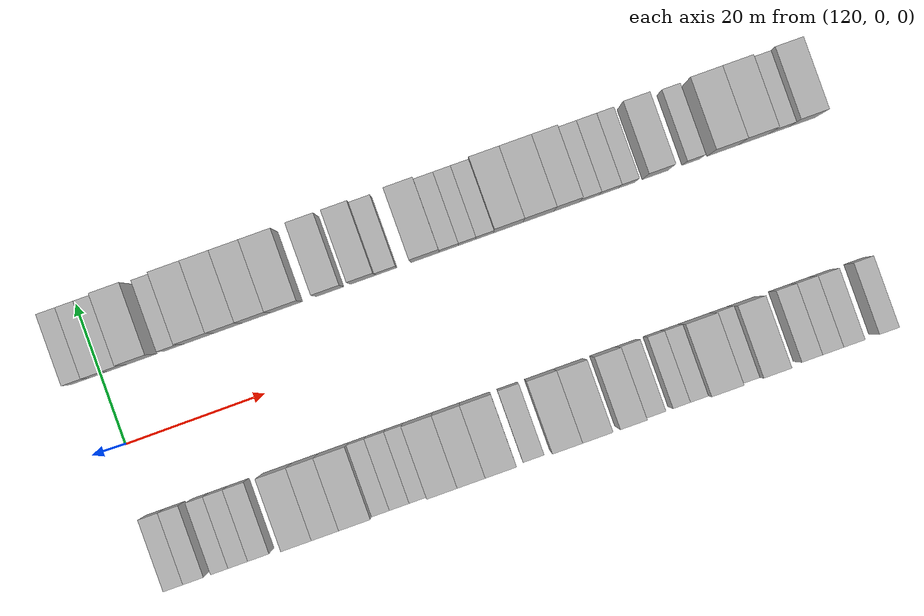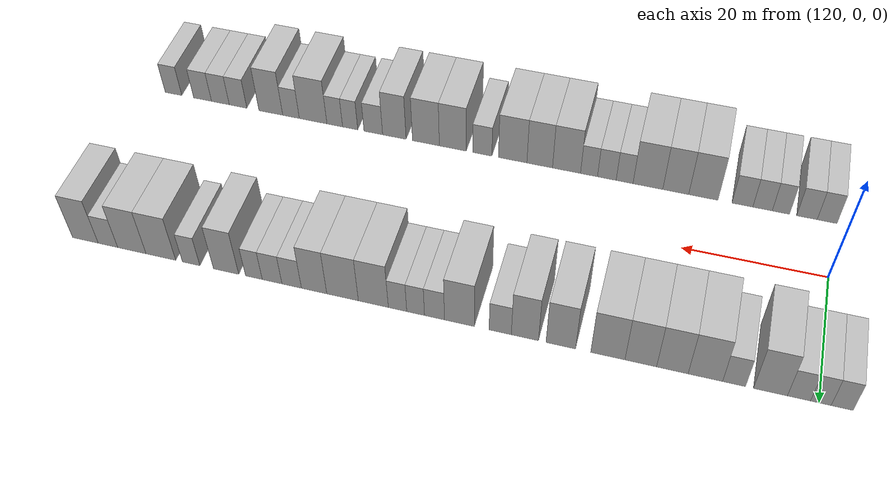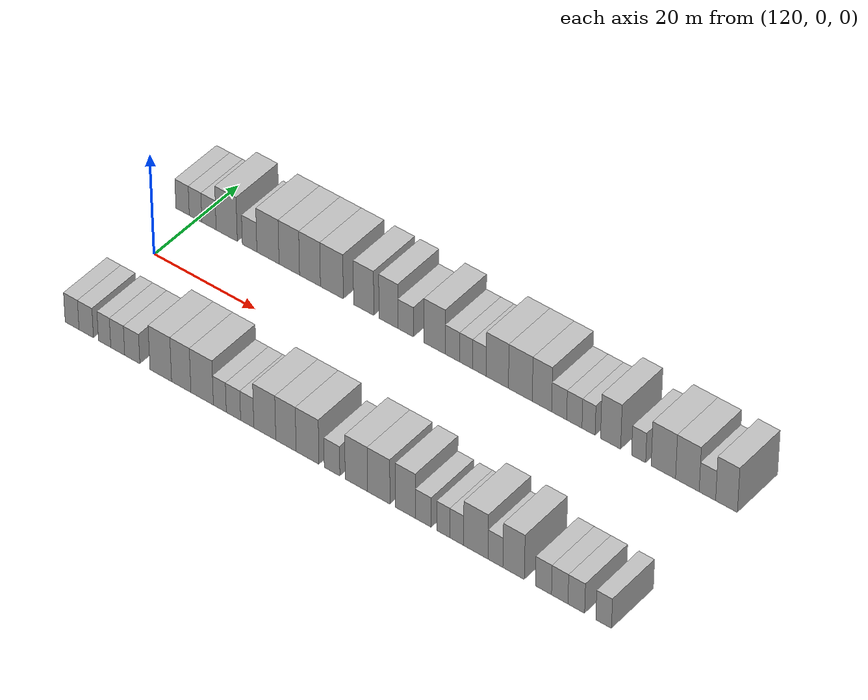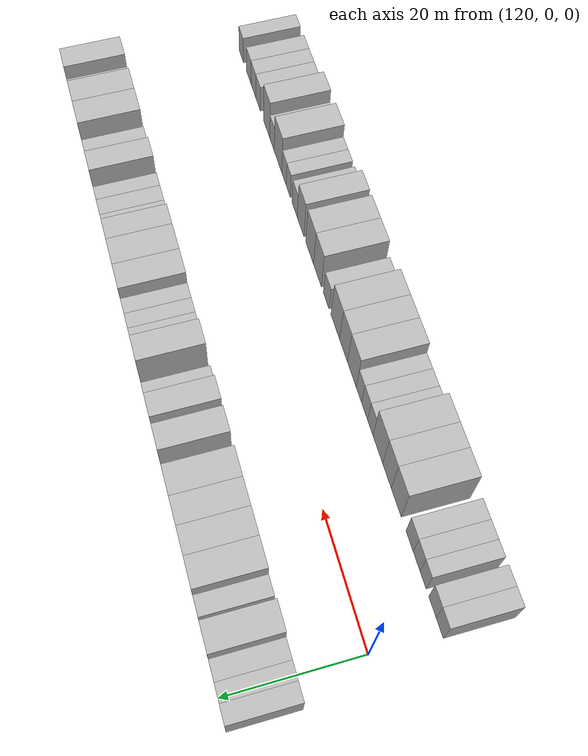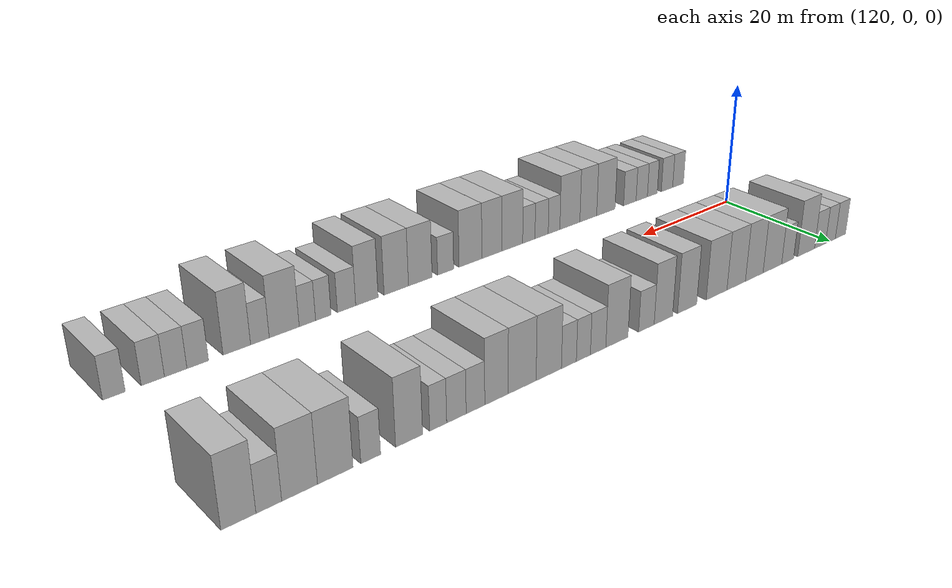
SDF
<sdf version="1.6">
 <world name="default">
  <model name="building_27">
   <static>1</static>
   <pose>117.1877 15.0000 0 0.000000 0.000000 1.570796</pose>
   <link name="link">
    <pose>0 0 3.00 0 0 0</pose>
    <collision name="collision"><geometry><box><size>10.0000 2.6824 6.0000</size></box></geometry></collision>
    <visual name="visual">
     <cast_shadows>0</cast_shadows>
     <geometry><box><size>10.0000 2.6824 6.0000</size></box></geometry>
     <material>
      <script>
       <uri>model://HANNAS_wall/materials/scripts</uri>
       <uri>model://HANNAS_wall/materials/textures</uri>
       <name>vrc/HANNAS_wall</name>
      </script>
     </material>
    </visual>
   </link>
  </model>
  <model name="building_28">
   <static>1</static>
   <pose>119.7982 15.0000 0 0.000000 0.000000 1.570796</pose>
   <link name="link">
    <pose>0 0 3.00 0 0 0</pose>
    <collision name="collision"><geometry><box><size>10.0000 2.5385 6.0000</size></box></geometry></collision>
    <visual name="visual">
     <cast_shadows>0</cast_shadows>
     <geometry><box><size>10.0000 2.5385 6.0000</size></box></geometry>
     <material>
      <script>
       <uri>model://HANNAS_wall/materials/scripts</uri>
       <uri>model://HANNAS_wall/materials/textures</uri>
       <name>vrc/HANNAS_wall</name>
      </script>
     </material>
    </visual>
   </link>
  </model>
  <model name="building_29">
   <static>1</static>
   <pose>122.4933 15.0000 0 0.000000 0.000000 1.570796</pose>
   <link name="link">
    <pose>0 0 3.00 0 0 0</pose>
    <collision name="collision"><geometry><box><size>10.0000 2.8517 6.0000</size></box></geometry></collision>
    <visual name="visual">
     <cast_shadows>0</cast_shadows>
     <geometry><box><size>10.0000 2.8517 6.0000</size></box></geometry>
     <material>
      <script>
       <uri>model://HANNAS_wall/materials/scripts</uri>
       <uri>model://HANNAS_wall/materials/textures</uri>
       <name>vrc/HANNAS_wall</name>
      </script>
     </material>
    </visual>
   </link>
  </model>
  <model name="building_30">
   <static>1</static>
   <pose>126.0310 15.0000 0 0.000000 0.000000 1.570796</pose>
   <link name="link">
    <pose>0 0 4.50 0 0 0</pose>
    <collision name="collision"><geometry><box><size>10.0000 4.2237 9.0000</size></box></geometry></collision>
    <visual name="visual">
     <cast_shadows>0</cast_shadows>
     <geometry><box><size>10.0000 4.2237 9.0000</size></box></geometry>
     <material>
      <script>
       <uri>model://HANNAS_wall/materials/scripts</uri>
       <uri>model://HANNAS_wall/materials/textures</uri>
       <name>vrc/HANNAS_wall</name>
      </script>
     </material>
    </visual>
   </link>
  </model>
  <model name="building_31">
   <static>1</static>
   <pose>130.5884 15.0000 0 0.000000 0.000000 1.570796</pose>
   <link name="link">
    <pose>0 0 3.00 0 0 0</pose>
    <collision name="collision"><geometry><box><size>10.0000 2.8909 6.0000</size></box></geometry></collision>
    <visual name="visual">
     <cast_shadows>0</cast_shadows>
     <geometry><box><size>10.0000 2.8909 6.0000</size></box></geometry>
     <material>
      <script>
       <uri>model://HANNAS_wall/materials/scripts</uri>
       <uri>model://HANNAS_wall/materials/textures</uri>
       <name>vrc/HANNAS_wall</name>
      </script>
     </material>
    </visual>
   </link>
  </model>
  <model name="building_32">
   <static>1</static>
   <pose>134.2233 15.0000 0 0.000000 0.000000 1.570796</pose>
   <link name="link">
    <pose>0 0 4.50 0 0 0</pose>
    <collision name="collision"><geometry><box><size>10.0000 4.3790 9.0000</size></box></geometry></collision>
    <visual name="visual">
     <cast_shadows>0</cast_shadows>
     <geometry><box><size>10.0000 4.3790 9.0000</size></box></geometry>
     <material>
      <script>
       <uri>model://HANNAS_wall/materials/scripts</uri>
       <uri>model://HANNAS_wall/materials/textures</uri>
       <name>vrc/HANNAS_wall</name>
      </script>
     </material>
    </visual>
   </link>
  </model>
  <model name="building_33">
   <static>1</static>
   <pose>138.4308 15.0000 0 0.000000 0.000000 1.570796</pose>
   <link name="link">
    <pose>0 0 4.50 0 0 0</pose>
    <collision name="collision"><geometry><box><size>10.0000 4.0360 9.0000</size></box></geometry></collision>
    <visual name="visual">
     <cast_shadows>0</cast_shadows>
     <geometry><box><size>10.0000 4.0360 9.0000</size></box></geometry>
     <material>
      <script>
       <uri>model://HANNAS_wall/materials/scripts</uri>
       <uri>model://HANNAS_wall/materials/textures</uri>
       <name>vrc/HANNAS_wall</name>
      </script>
     </material>
    </visual>
   </link>
  </model>
  <model name="building_34">
   <static>1</static>
   <pose>142.4952 15.0000 0 0.000000 0.000000 1.570796</pose>
   <link name="link">
    <pose>0 0 4.50 0 0 0</pose>
    <collision name="collision"><geometry><box><size>10.0000 4.0927 9.0000</size></box></geometry></collision>
    <visual name="visual">
     <cast_shadows>0</cast_shadows>
     <geometry><box><size>10.0000 4.0927 9.0000</size></box></geometry>
     <material>
      <script>
       <uri>model://HANNAS_wall/materials/scripts</uri>
       <uri>model://HANNAS_wall/materials/textures</uri>
       <name>vrc/HANNAS_wall</name>
      </script>
     </material>
    </visual>
   </link>
  </model>
  <model name="building_35">
   <static>1</static>
   <pose>146.7730 15.0000 0 0.000000 0.000000 1.570796</pose>
   <link name="link">
    <pose>0 0 4.50 0 0 0</pose>
    <collision name="collision"><geometry><box><size>10.0000 4.4629 9.0000</size></box></geometry></collision>
    <visual name="visual">
     <cast_shadows>0</cast_shadows>
     <geometry><box><size>10.0000 4.4629 9.0000</size></box></geometry>
     <material>
      <script>
       <uri>model://HANNAS_wall/materials/scripts</uri>
       <uri>model://HANNAS_wall/materials/textures</uri>
       <name>vrc/HANNAS_wall</name>
      </script>
     </material>
    </visual>
   </link>
  </model>
  <model name="building_36">
   <static>1</static>
   <pose>152.9612 15.0000 0 0.000000 0.000000 1.570796</pose>
   <link name="link">
    <pose>0 0 4.50 0 0 0</pose>
    <collision name="collision"><geometry><box><size>10.0000 3.9135 9.0000</size></box></geometry></collision>
    <visual name="visual">
     <cast_shadows>0</cast_shadows>
     <geometry><box><size>10.0000 3.9135 9.0000</size></box></geometry>
     <material>
      <script>
       <uri>model://HANNAS_wall/materials/scripts</uri>
       <uri>model://HANNAS_wall/materials/textures</uri>
       <name>vrc/HANNAS_wall</name>
      </script>
     </material>
    </visual>
   </link>
  </model>
  <model name="building_37">
   <static>1</static>
   <pose>157.7371 15.0000 0 0.000000 0.000000 1.570796</pose>
   <link name="link">
    <pose>0 0 4.50 0 0 0</pose>
    <collision name="collision"><geometry><box><size>10.0000 3.6383 9.0000</size></box></geometry></collision>
    <visual name="visual">
     <cast_shadows>0</cast_shadows>
     <geometry><box><size>10.0000 3.6383 9.0000</size></box></geometry>
     <material>
      <script>
       <uri>model://HANNAS_wall/materials/scripts</uri>
       <uri>model://HANNAS_wall/materials/textures</uri>
       <name>vrc/HANNAS_wall</name>
      </script>
     </material>
    </visual>
   </link>
  </model>
  <model name="building_38">
   <static>1</static>
   <pose>161.0521 15.0000 0 0.000000 0.000000 1.570796</pose>
   <link name="link">
    <pose>0 0 3.00 0 0 0</pose>
    <collision name="collision"><geometry><box><size>10.0000 2.9917 6.0000</size></box></geometry></collision>
    <visual name="visual">
     <cast_shadows>0</cast_shadows>
     <geometry><box><size>10.0000 2.9917 6.0000</size></box></geometry>
     <material>
      <script>
       <uri>model://HANNAS_wall/materials/scripts</uri>
       <uri>model://HANNAS_wall/materials/textures</uri>
       <name>vrc/HANNAS_wall</name>
      </script>
     </material>
    </visual>
   </link>
  </model>
  <model name="building_39">
   <static>1</static>
   <pose>166.5863 15.0000 0 0.000000 0.000000 1.570796</pose>
   <link name="link">
    <pose>0 0 4.50 0 0 0</pose>
    <collision name="collision"><geometry><box><size>10.0000 4.0768 9.0000</size></box></geometry></collision>
    <visual name="visual">
     <cast_shadows>0</cast_shadows>
     <geometry><box><size>10.0000 4.0768 9.0000</size></box></geometry>
     <material>
      <script>
       <uri>model://HANNAS_wall/materials/scripts</uri>
       <uri>model://HANNAS_wall/materials/textures</uri>
       <name>vrc/HANNAS_wall</name>
      </script>
     </material>
    </visual>
   </link>
  </model>
  <model name="building_40">
   <static>1</static>
   <pose>169.9971 15.0000 0 0.000000 0.000000 1.570796</pose>
   <link name="link">
    <pose>0 0 3.00 0 0 0</pose>
    <collision name="collision"><geometry><box><size>10.0000 2.7448 6.0000</size></box></geometry></collision>
    <visual name="visual">
     <cast_shadows>0</cast_shadows>
     <geometry><box><size>10.0000 2.7448 6.0000</size></box></geometry>
     <material>
      <script>
       <uri>model://HANNAS_wall/materials/scripts</uri>
       <uri>model://HANNAS_wall/materials/textures</uri>
       <name>vrc/HANNAS_wall</name>
      </script>
     </material>
    </visual>
   </link>
  </model>
  <model name="building_41">
   <static>1</static>
   <pose>172.5984 15.0000 0 0.000000 0.000000 1.570796</pose>
   <link name="link">
    <pose>0 0 3.00 0 0 0</pose>
    <collision name="collision"><geometry><box><size>10.0000 2.4578 6.0000</size></box></geometry></collision>
    <visual name="visual">
     <cast_shadows>0</cast_shadows>
     <geometry><box><size>10.0000 2.4578 6.0000</size></box></geometry>
     <material>
      <script>
       <uri>model://HANNAS_wall/materials/scripts</uri>
       <uri>model://HANNAS_wall/materials/textures</uri>
       <name>vrc/HANNAS_wall</name>
      </script>
     </material>
    </visual>
   </link>
  </model>
  <model name="building_42">
   <static>1</static>
   <pose>175.1026 15.0000 0 0.000000 0.000000 1.570796</pose>
   <link name="link">
    <pose>0 0 3.00 0 0 0</pose>
    <collision name="collision"><geometry><box><size>10.0000 2.5506 6.0000</size></box></geometry></collision>
    <visual name="visual">
     <cast_shadows>0</cast_shadows>
     <geometry><box><size>10.0000 2.5506 6.0000</size></box></geometry>
     <material>
      <script>
       <uri>model://HANNAS_wall/materials/scripts</uri>
       <uri>model://HANNAS_wall/materials/textures</uri>
       <name>vrc/HANNAS_wall</name>
      </script>
     </material>
    </visual>
   </link>
  </model>
  <model name="building_43">
   <static>1</static>
   <pose>178.4787 15.0000 0 0.000000 0.000000 1.570796</pose>
   <link name="link">
    <pose>0 0 4.50 0 0 0</pose>
    <collision name="collision"><geometry><box><size>10.0000 4.2018 9.0000</size></box></geometry></collision>
    <visual name="visual">
     <cast_shadows>0</cast_shadows>
     <geometry><box><size>10.0000 4.2018 9.0000</size></box></geometry>
     <material>
      <script>
       <uri>model://HANNAS_wall/materials/scripts</uri>
       <uri>model://HANNAS_wall/materials/textures</uri>
       <name>vrc/HANNAS_wall</name>
      </script>
     </material>
    </visual>
   </link>
  </model>
  <model name="building_44">
   <static>1</static>
   <pose>182.8127 15.0000 0 0.000000 0.000000 1.570796</pose>
   <link name="link">
    <pose>0 0 4.50 0 0 0</pose>
    <collision name="collision"><geometry><box><size>10.0000 4.4660 9.0000</size></box></geometry></collision>
    <visual name="visual">
     <cast_shadows>0</cast_shadows>
     <geometry><box><size>10.0000 4.4660 9.0000</size></box></geometry>
     <material>
      <script>
       <uri>model://HANNAS_wall/materials/scripts</uri>
       <uri>model://HANNAS_wall/materials/textures</uri>
       <name>vrc/HANNAS_wall</name>
      </script>
     </material>
    </visual>
   </link>
  </model>
  <model name="building_45">
   <static>1</static>
   <pose>186.8530 15.0000 0 0.000000 0.000000 1.570796</pose>
   <link name="link">
    <pose>0 0 4.50 0 0 0</pose>
    <collision name="collision"><geometry><box><size>10.0000 3.6148 9.0000</size></box></geometry></collision>
    <visual name="visual">
     <cast_shadows>0</cast_shadows>
     <geometry><box><size>10.0000 3.6148 9.0000</size></box></geometry>
     <material>
      <script>
       <uri>model://HANNAS_wall/materials/scripts</uri>
       <uri>model://HANNAS_wall/materials/textures</uri>
       <name>vrc/HANNAS_wall</name>
      </script>
     </material>
    </visual>
   </link>
  </model>
  <model name="building_46">
   <static>1</static>
   <pose>190.0587 15.0000 0 0.000000 0.000000 1.570796</pose>
   <link name="link">
    <pose>0 0 3.00 0 0 0</pose>
    <collision name="collision"><geometry><box><size>10.0000 2.7965 6.0000</size></box></geometry></collision>
    <visual name="visual">
     <cast_shadows>0</cast_shadows>
     <geometry><box><size>10.0000 2.7965 6.0000</size></box></geometry>
     <material>
      <script>
       <uri>model://HANNAS_wall/materials/scripts</uri>
       <uri>model://HANNAS_wall/materials/textures</uri>
       <name>vrc/HANNAS_wall</name>
      </script>
     </material>
    </visual>
   </link>
  </model>
  <model name="building_47">
   <static>1</static>
   <pose>192.8791 15.0000 0 0.000000 0.000000 1.570796</pose>
   <link name="link">
    <pose>0 0 3.00 0 0 0</pose>
    <collision name="collision"><geometry><box><size>10.0000 2.8443 6.0000</size></box></geometry></collision>
    <visual name="visual">
     <cast_shadows>0</cast_shadows>
     <geometry><box><size>10.0000 2.8443 6.0000</size></box></geometry>
     <material>
      <script>
       <uri>model://HANNAS_wall/materials/scripts</uri>
       <uri>model://HANNAS_wall/materials/textures</uri>
       <name>vrc/HANNAS_wall</name>
      </script>
     </material>
    </visual>
   </link>
  </model>
  <model name="building_48">
   <static>1</static>
   <pose>195.5133 15.0000 0 0.000000 0.000000 1.570796</pose>
   <link name="link">
    <pose>0 0 3.00 0 0 0</pose>
    <collision name="collision"><geometry><box><size>10.0000 2.4240 6.0000</size></box></geometry></collision>
    <visual name="visual">
     <cast_shadows>0</cast_shadows>
     <geometry><box><size>10.0000 2.4240 6.0000</size></box></geometry>
     <material>
      <script>
       <uri>model://HANNAS_wall/materials/scripts</uri>
       <uri>model://HANNAS_wall/materials/textures</uri>
       <name>vrc/HANNAS_wall</name>
      </script>
     </material>
    </visual>
   </link>
  </model>
  <model name="building_49">
   <static>1</static>
   <pose>199.5779 15.0000 0 0.000000 0.000000 1.570796</pose>
   <link name="link">
    <pose>0 0 4.50 0 0 0</pose>
    <collision name="collision"><geometry><box><size>10.0000 3.7052 9.0000</size></box></geometry></collision>
    <visual name="visual">
     <cast_shadows>0</cast_shadows>
     <geometry><box><size>10.0000 3.7052 9.0000</size></box></geometry>
     <material>
      <script>
       <uri>model://HANNAS_wall/materials/scripts</uri>
       <uri>model://HANNAS_wall/materials/textures</uri>
       <name>vrc/HANNAS_wall</name>
      </script>
     </material>
    </visual>
   </link>
  </model>
  <model name="building_50">
   <static>1</static>
   <pose>204.7219 15.0000 0 0.000000 0.000000 1.570796</pose>
   <link name="link">
    <pose>0 0 3.00 0 0 0</pose>
    <collision name="collision"><geometry><box><size>10.0000 2.5828 6.0000</size></box></geometry></collision>
    <visual name="visual">
     <cast_shadows>0</cast_shadows>
     <geometry><box><size>10.0000 2.5828 6.0000</size></box></geometry>
     <material>
      <script>
       <uri>model://HANNAS_wall/materials/scripts</uri>
       <uri>model://HANNAS_wall/materials/textures</uri>
       <name>vrc/HANNAS_wall</name>
      </script>
     </material>
    </visual>
   </link>
  </model>
  <model name="building_51">
   <static>1</static>
   <pose>209.2341 15.0000 0 0.000000 0.000000 1.570796</pose>
   <link name="link">
    <pose>0 0 4.50 0 0 0</pose>
    <collision name="collision"><geometry><box><size>10.0000 4.4417 9.0000</size></box></geometry></collision>
    <visual name="visual">
     <cast_shadows>0</cast_shadows>
     <geometry><box><size>10.0000 4.4417 9.0000</size></box></geometry>
     <material>
      <script>
       <uri>model://HANNAS_wall/materials/scripts</uri>
       <uri>model://HANNAS_wall/materials/textures</uri>
       <name>vrc/HANNAS_wall</name>
      </script>
     </material>
    </visual>
   </link>
  </model>
  <model name="building_52">
   <static>1</static>
   <pose>213.5964 15.0000 0 0.000000 0.000000 1.570796</pose>
   <link name="link">
    <pose>0 0 4.50 0 0 0</pose>
    <collision name="collision"><geometry><box><size>10.0000 4.2829 9.0000</size></box></geometry></collision>
    <visual name="visual">
     <cast_shadows>0</cast_shadows>
     <geometry><box><size>10.0000 4.2829 9.0000</size></box></geometry>
     <material>
      <script>
       <uri>model://HANNAS_wall/materials/scripts</uri>
       <uri>model://HANNAS_wall/materials/textures</uri>
       <name>vrc/HANNAS_wall</name>
      </script>
     </material>
    </visual>
   </link>
  </model>
  <model name="building_53">
   <static>1</static>
   <pose>217.2213 15.0000 0 0.000000 0.000000 1.570796</pose>
   <link name="link">
    <pose>0 0 3.00 0 0 0</pose>
    <collision name="collision"><geometry><box><size>10.0000 2.9670 6.0000</size></box></geometry></collision>
    <visual name="visual">
     <cast_shadows>0</cast_shadows>
     <geometry><box><size>10.0000 2.9670 6.0000</size></box></geometry>
     <material>
      <script>
       <uri>model://HANNAS_wall/materials/scripts</uri>
       <uri>model://HANNAS_wall/materials/textures</uri>
       <name>vrc/HANNAS_wall</name>
      </script>
     </material>
    </visual>
   </link>
  </model>
  <model name="building_54">
   <static>1</static>
   <pose>220.6630 15.0000 0 0.000000 0.000000 1.570796</pose>
   <link name="link">
    <pose>0 0 4.50 0 0 0</pose>
    <collision name="collision"><geometry><box><size>10.0000 3.9164 9.0000</size></box></geometry></collision>
    <visual name="visual">
     <cast_shadows>0</cast_shadows>
     <geometry><box><size>10.0000 3.9164 9.0000</size></box></geometry>
     <material>
      <script>
       <uri>model://HANNAS_wall/materials/scripts</uri>
       <uri>model://HANNAS_wall/materials/textures</uri>
       <name>vrc/HANNAS_wall</name>
      </script>
     </material>
    </visual>
   </link>
  </model>
  <model name="building_84">
   <static>1</static>
   <pose>120.7482 -15.0000 0 0.000000 0.000000 1.570796</pose>
   <link name="link">
    <pose>0 0 3.00 0 0 0</pose>
    <collision name="collision"><geometry><box><size>10.0000 2.7548 6.0000</size></box></geometry></collision>
    <visual name="visual">
     <cast_shadows>0</cast_shadows>
     <geometry><box><size>10.0000 2.7548 6.0000</size></box></geometry>
     <material>
      <script>
       <uri>model://HANNAS_wall/materials/scripts</uri>
       <uri>model://HANNAS_wall/materials/textures</uri>
       <name>vrc/HANNAS_wall</name>
      </script>
     </material>
    </visual>
   </link>
  </model>
  <model name="building_85">
   <static>1</static>
   <pose>123.5586 -15.0000 0 0.000000 0.000000 1.570796</pose>
   <link name="link">
    <pose>0 0 3.00 0 0 0</pose>
    <collision name="collision"><geometry><box><size>10.0000 2.8660 6.0000</size></box></geometry></collision>
    <visual name="visual">
     <cast_shadows>0</cast_shadows>
     <geometry><box><size>10.0000 2.8660 6.0000</size></box></geometry>
     <material>
      <script>
       <uri>model://HANNAS_wall/materials/scripts</uri>
       <uri>model://HANNAS_wall/materials/textures</uri>
       <name>vrc/HANNAS_wall</name>
      </script>
     </material>
    </visual>
   </link>
  </model>
  <model name="building_86">
   <static>1</static>
   <pose>127.2113 -15.0000 0 0.000000 0.000000 1.570796</pose>
   <link name="link">
    <pose>0 0 3.00 0 0 0</pose>
    <collision name="collision"><geometry><box><size>10.0000 2.4393 6.0000</size></box></geometry></collision>
    <visual name="visual">
     <cast_shadows>0</cast_shadows>
     <geometry><box><size>10.0000 2.4393 6.0000</size></box></geometry>
     <material>
      <script>
       <uri>model://HANNAS_wall/materials/scripts</uri>
       <uri>model://HANNAS_wall/materials/textures</uri>
       <name>vrc/HANNAS_wall</name>
      </script>
     </material>
    </visual>
   </link>
  </model>
  <model name="building_87">
   <static>1</static>
   <pose>129.8040 -15.0000 0 0.000000 0.000000 1.570796</pose>
   <link name="link">
    <pose>0 0 3.00 0 0 0</pose>
    <collision name="collision"><geometry><box><size>10.0000 2.7460 6.0000</size></box></geometry></collision>
    <visual name="visual">
     <cast_shadows>0</cast_shadows>
     <geometry><box><size>10.0000 2.7460 6.0000</size></box></geometry>
     <material>
      <script>
       <uri>model://HANNAS_wall/materials/scripts</uri>
       <uri>model://HANNAS_wall/materials/textures</uri>
       <name>vrc/HANNAS_wall</name>
      </script>
     </material>
    </visual>
   </link>
  </model>
  <model name="building_88">
   <static>1</static>
   <pose>132.6637 -15.0000 0 0.000000 0.000000 1.570796</pose>
   <link name="link">
    <pose>0 0 3.00 0 0 0</pose>
    <collision name="collision"><geometry><box><size>10.0000 2.9735 6.0000</size></box></geometry></collision>
    <visual name="visual">
     <cast_shadows>0</cast_shadows>
     <geometry><box><size>10.0000 2.9735 6.0000</size></box></geometry>
     <material>
      <script>
       <uri>model://HANNAS_wall/materials/scripts</uri>
       <uri>model://HANNAS_wall/materials/textures</uri>
       <name>vrc/HANNAS_wall</name>
      </script>
     </material>
    </visual>
   </link>
  </model>
  <model name="building_89">
   <static>1</static>
   <pose>138.2594 -15.0000 0 0.000000 0.000000 1.570796</pose>
   <link name="link">
    <pose>0 0 4.50 0 0 0</pose>
    <collision name="collision"><geometry><box><size>10.0000 4.2178 9.0000</size></box></geometry></collision>
    <visual name="visual">
     <cast_shadows>0</cast_shadows>
     <geometry><box><size>10.0000 4.2178 9.0000</size></box></geometry>
     <material>
      <script>
       <uri>model://HANNAS_wall/materials/scripts</uri>
       <uri>model://HANNAS_wall/materials/textures</uri>
       <name>vrc/HANNAS_wall</name>
      </script>
     </material>
    </visual>
   </link>
  </model>
  <model name="building_90">
   <static>1</static>
   <pose>142.2502 -15.0000 0 0.000000 0.000000 1.570796</pose>
   <link name="link">
    <pose>0 0 4.50 0 0 0</pose>
    <collision name="collision"><geometry><box><size>10.0000 3.7639 9.0000</size></box></geometry></collision>
    <visual name="visual">
     <cast_shadows>0</cast_shadows>
     <geometry><box><size>10.0000 3.7639 9.0000</size></box></geometry>
     <material>
      <script>
       <uri>model://HANNAS_wall/materials/scripts</uri>
       <uri>model://HANNAS_wall/materials/textures</uri>
       <name>vrc/HANNAS_wall</name>
      </script>
     </material>
    </visual>
   </link>
  </model>
  <model name="building_91">
   <static>1</static>
   <pose>146.3082 -15.0000 0 0.000000 0.000000 1.570796</pose>
   <link name="link">
    <pose>0 0 4.50 0 0 0</pose>
    <collision name="collision"><geometry><box><size>10.0000 4.3521 9.0000</size></box></geometry></collision>
    <visual name="visual">
     <cast_shadows>0</cast_shadows>
     <geometry><box><size>10.0000 4.3521 9.0000</size></box></geometry>
     <material>
      <script>
       <uri>model://HANNAS_wall/materials/scripts</uri>
       <uri>model://HANNAS_wall/materials/textures</uri>
       <name>vrc/HANNAS_wall</name>
      </script>
     </material>
    </visual>
   </link>
  </model>
  <model name="building_92">
   <static>1</static>
   <pose>149.7268 -15.0000 0 0.000000 0.000000 1.570796</pose>
   <link name="link">
    <pose>0 0 3.00 0 0 0</pose>
    <collision name="collision"><geometry><box><size>10.0000 2.4851 6.0000</size></box></geometry></collision>
    <visual name="visual">
     <cast_shadows>0</cast_shadows>
     <geometry><box><size>10.0000 2.4851 6.0000</size></box></geometry>
     <material>
      <script>
       <uri>model://HANNAS_wall/materials/scripts</uri>
       <uri>model://HANNAS_wall/materials/textures</uri>
       <name>vrc/HANNAS_wall</name>
      </script>
     </material>
    </visual>
   </link>
  </model>
  <model name="building_93">
   <static>1</static>
   <pose>152.3504 -15.0000 0 0.000000 0.000000 1.570796</pose>
   <link name="link">
    <pose>0 0 3.00 0 0 0</pose>
    <collision name="collision"><geometry><box><size>10.0000 2.7621 6.0000</size></box></geometry></collision>
    <visual name="visual">
     <cast_shadows>0</cast_shadows>
     <geometry><box><size>10.0000 2.7621 6.0000</size></box></geometry>
     <material>
      <script>
       <uri>model://HANNAS_wall/materials/scripts</uri>
       <uri>model://HANNAS_wall/materials/textures</uri>
       <name>vrc/HANNAS_wall</name>
      </script>
     </material>
    </visual>
   </link>
  </model>
  <model name="building_94">
   <static>1</static>
   <pose>154.9965 -15.0000 0 0.000000 0.000000 1.570796</pose>
   <link name="link">
    <pose>0 0 3.00 0 0 0</pose>
    <collision name="collision"><geometry><box><size>10.0000 2.5301 6.0000</size></box></geometry></collision>
    <visual name="visual">
     <cast_shadows>0</cast_shadows>
     <geometry><box><size>10.0000 2.5301 6.0000</size></box></geometry>
     <material>
      <script>
       <uri>model://HANNAS_wall/materials/scripts</uri>
       <uri>model://HANNAS_wall/materials/textures</uri>
       <name>vrc/HANNAS_wall</name>
      </script>
     </material>
    </visual>
   </link>
  </model>
  <model name="building_95">
   <static>1</static>
   <pose>158.3616 -15.0000 0 0.000000 0.000000 1.570796</pose>
   <link name="link">
    <pose>0 0 4.50 0 0 0</pose>
    <collision name="collision"><geometry><box><size>10.0000 4.2000 9.0000</size></box></geometry></collision>
    <visual name="visual">
     <cast_shadows>0</cast_shadows>
     <geometry><box><size>10.0000 4.2000 9.0000</size></box></geometry>
     <material>
      <script>
       <uri>model://HANNAS_wall/materials/scripts</uri>
       <uri>model://HANNAS_wall/materials/textures</uri>
       <name>vrc/HANNAS_wall</name>
      </script>
     </material>
    </visual>
   </link>
  </model>
  <model name="building_96">
   <static>1</static>
   <pose>162.3962 -15.0000 0 0.000000 0.000000 1.570796</pose>
   <link name="link">
    <pose>0 0 4.50 0 0 0</pose>
    <collision name="collision"><geometry><box><size>10.0000 3.8693 9.0000</size></box></geometry></collision>
    <visual name="visual">
     <cast_shadows>0</cast_shadows>
     <geometry><box><size>10.0000 3.8693 9.0000</size></box></geometry>
     <material>
      <script>
       <uri>model://HANNAS_wall/materials/scripts</uri>
       <uri>model://HANNAS_wall/materials/textures</uri>
       <name>vrc/HANNAS_wall</name>
      </script>
     </material>
    </visual>
   </link>
  </model>
  <model name="building_97">
   <static>1</static>
   <pose>166.4944 -15.0000 0 0.000000 0.000000 1.570796</pose>
   <link name="link">
    <pose>0 0 4.50 0 0 0</pose>
    <collision name="collision"><geometry><box><size>10.0000 4.3270 9.0000</size></box></geometry></collision>
    <visual name="visual">
     <cast_shadows>0</cast_shadows>
     <geometry><box><size>10.0000 4.3270 9.0000</size></box></geometry>
     <material>
      <script>
       <uri>model://HANNAS_wall/materials/scripts</uri>
       <uri>model://HANNAS_wall/materials/textures</uri>
       <name>vrc/HANNAS_wall</name>
      </script>
     </material>
    </visual>
   </link>
  </model>
  <model name="building_98">
   <static>1</static>
   <pose>171.1292 -15.0000 0 0.000000 0.000000 1.570796</pose>
   <link name="link">
    <pose>0 0 3.00 0 0 0</pose>
    <collision name="collision"><geometry><box><size>10.0000 2.9427 6.0000</size></box></geometry></collision>
    <visual name="visual">
     <cast_shadows>0</cast_shadows>
     <geometry><box><size>10.0000 2.9427 6.0000</size></box></geometry>
     <material>
      <script>
       <uri>model://HANNAS_wall/materials/scripts</uri>
       <uri>model://HANNAS_wall/materials/textures</uri>
       <name>vrc/HANNAS_wall</name>
      </script>
     </material>
    </visual>
   </link>
  </model>
  <model name="building_99">
   <static>1</static>
   <pose>175.6880 -15.0000 0 0.000000 0.000000 1.570796</pose>
   <link name="link">
    <pose>0 0 4.50 0 0 0</pose>
    <collision name="collision"><geometry><box><size>10.0000 4.1748 9.0000</size></box></geometry></collision>
    <visual name="visual">
     <cast_shadows>0</cast_shadows>
     <geometry><box><size>10.0000 4.1748 9.0000</size></box></geometry>
     <material>
      <script>
       <uri>model://HANNAS_wall/materials/scripts</uri>
       <uri>model://HANNAS_wall/materials/textures</uri>
       <name>vrc/HANNAS_wall</name>
      </script>
     </material>
    </visual>
   </link>
  </model>
  <model name="building_100">
   <static>1</static>
   <pose>179.8723 -15.0000 0 0.000000 0.000000 1.570796</pose>
   <link name="link">
    <pose>0 0 4.50 0 0 0</pose>
    <collision name="collision"><geometry><box><size>10.0000 4.1937 9.0000</size></box></geometry></collision>
    <visual name="visual">
     <cast_shadows>0</cast_shadows>
     <geometry><box><size>10.0000 4.1937 9.0000</size></box></geometry>
     <material>
      <script>
       <uri>model://HANNAS_wall/materials/scripts</uri>
       <uri>model://HANNAS_wall/materials/textures</uri>
       <name>vrc/HANNAS_wall</name>
      </script>
     </material>
    </visual>
   </link>
  </model>
  <model name="building_101">
   <static>1</static>
   <pose>184.8235 -15.0000 0 0.000000 0.000000 1.570796</pose>
   <link name="link">
    <pose>0 0 4.50 0 0 0</pose>
    <collision name="collision"><geometry><box><size>10.0000 3.7087 9.0000</size></box></geometry></collision>
    <visual name="visual">
     <cast_shadows>0</cast_shadows>
     <geometry><box><size>10.0000 3.7087 9.0000</size></box></geometry>
     <material>
      <script>
       <uri>model://HANNAS_wall/materials/scripts</uri>
       <uri>model://HANNAS_wall/materials/textures</uri>
       <name>vrc/HANNAS_wall</name>
      </script>
     </material>
    </visual>
   </link>
  </model>
  <model name="building_102">
   <static>1</static>
   <pose>188.1525 -15.0000 0 0.000000 0.000000 1.570796</pose>
   <link name="link">
    <pose>0 0 3.00 0 0 0</pose>
    <collision name="collision"><geometry><box><size>10.0000 2.9494 6.0000</size></box></geometry></collision>
    <visual name="visual">
     <cast_shadows>0</cast_shadows>
     <geometry><box><size>10.0000 2.9494 6.0000</size></box></geometry>
     <material>
      <script>
       <uri>model://HANNAS_wall/materials/scripts</uri>
       <uri>model://HANNAS_wall/materials/textures</uri>
       <name>vrc/HANNAS_wall</name>
      </script>
     </material>
    </visual>
   </link>
  </model>
  <model name="building_103">
   <static>1</static>
   <pose>191.8397 -15.0000 0 0.000000 0.000000 1.570796</pose>
   <link name="link">
    <pose>0 0 3.00 0 0 0</pose>
    <collision name="collision"><geometry><box><size>10.0000 2.4250 6.0000</size></box></geometry></collision>
    <visual name="visual">
     <cast_shadows>0</cast_shadows>
     <geometry><box><size>10.0000 2.4250 6.0000</size></box></geometry>
     <material>
      <script>
       <uri>model://HANNAS_wall/materials/scripts</uri>
       <uri>model://HANNAS_wall/materials/textures</uri>
       <name>vrc/HANNAS_wall</name>
      </script>
     </material>
    </visual>
   </link>
  </model>
  <model name="building_104">
   <static>1</static>
   <pose>194.3083 -15.0000 0 0.000000 0.000000 1.570796</pose>
   <link name="link">
    <pose>0 0 3.00 0 0 0</pose>
    <collision name="collision"><geometry><box><size>10.0000 2.5122 6.0000</size></box></geometry></collision>
    <visual name="visual">
     <cast_shadows>0</cast_shadows>
     <geometry><box><size>10.0000 2.5122 6.0000</size></box></geometry>
     <material>
      <script>
       <uri>model://HANNAS_wall/materials/scripts</uri>
       <uri>model://HANNAS_wall/materials/textures</uri>
       <name>vrc/HANNAS_wall</name>
      </script>
     </material>
    </visual>
   </link>
  </model>
  <model name="building_105">
   <static>1</static>
   <pose>197.7991 -15.0000 0 0.000000 0.000000 1.570796</pose>
   <link name="link">
    <pose>0 0 4.50 0 0 0</pose>
    <collision name="collision"><geometry><box><size>10.0000 4.4694 9.0000</size></box></geometry></collision>
    <visual name="visual">
     <cast_shadows>0</cast_shadows>
     <geometry><box><size>10.0000 4.4694 9.0000</size></box></geometry>
     <material>
      <script>
       <uri>model://HANNAS_wall/materials/scripts</uri>
       <uri>model://HANNAS_wall/materials/textures</uri>
       <name>vrc/HANNAS_wall</name>
      </script>
     </material>
    </visual>
   </link>
  </model>
  <model name="building_106">
   <static>1</static>
   <pose>201.3872 -15.0000 0 0.000000 0.000000 1.570796</pose>
   <link name="link">
    <pose>0 0 3.00 0 0 0</pose>
    <collision name="collision"><geometry><box><size>10.0000 2.7070 6.0000</size></box></geometry></collision>
    <visual name="visual">
     <cast_shadows>0</cast_shadows>
     <geometry><box><size>10.0000 2.7070 6.0000</size></box></geometry>
     <material>
      <script>
       <uri>model://HANNAS_wall/materials/scripts</uri>
       <uri>model://HANNAS_wall/materials/textures</uri>
       <name>vrc/HANNAS_wall</name>
      </script>
     </material>
    </visual>
   </link>
  </model>
  <model name="building_107">
   <static>1</static>
   <pose>204.6859 -15.0000 0 0.000000 0.000000 1.570796</pose>
   <link name="link">
    <pose>0 0 4.50 0 0 0</pose>
    <collision name="collision"><geometry><box><size>10.0000 3.8904 9.0000</size></box></geometry></collision>
    <visual name="visual">
     <cast_shadows>0</cast_shadows>
     <geometry><box><size>10.0000 3.8904 9.0000</size></box></geometry>
     <material>
      <script>
       <uri>model://HANNAS_wall/materials/scripts</uri>
       <uri>model://HANNAS_wall/materials/textures</uri>
       <name>vrc/HANNAS_wall</name>
      </script>
     </material>
    </visual>
   </link>
  </model>
  <model name="building_108">
   <static>1</static>
   <pose>210.0853 -15.0000 0 0.000000 0.000000 1.570796</pose>
   <link name="link">
    <pose>0 0 3.00 0 0 0</pose>
    <collision name="collision"><geometry><box><size>10.0000 2.9086 6.0000</size></box></geometry></collision>
    <visual name="visual">
     <cast_shadows>0</cast_shadows>
     <geometry><box><size>10.0000 2.9086 6.0000</size></box></geometry>
     <material>
      <script>
       <uri>model://HANNAS_wall/materials/scripts</uri>
       <uri>model://HANNAS_wall/materials/textures</uri>
       <name>vrc/HANNAS_wall</name>
      </script>
     </material>
    </visual>
   </link>
  </model>
  <model name="building_109">
   <static>1</static>
   <pose>213.0169 -15.0000 0 0.000000 0.000000 1.570796</pose>
   <link name="link">
    <pose>0 0 3.00 0 0 0</pose>
    <collision name="collision"><geometry><box><size>10.0000 2.9546 6.0000</size></box></geometry></collision>
    <visual name="visual">
     <cast_shadows>0</cast_shadows>
     <geometry><box><size>10.0000 2.9546 6.0000</size></box></geometry>
     <material>
      <script>
       <uri>model://HANNAS_wall/materials/scripts</uri>
       <uri>model://HANNAS_wall/materials/textures</uri>
       <name>vrc/HANNAS_wall</name>
      </script>
     </material>
    </visual>
   </link>
  </model>
  <model name="building_110">
   <static>1</static>
   <pose>215.9859 -15.0000 0 0.000000 0.000000 1.570796</pose>
   <link name="link">
    <pose>0 0 3.00 0 0 0</pose>
    <collision name="collision"><geometry><box><size>10.0000 2.9835 6.0000</size></box></geometry></collision>
    <visual name="visual">
     <cast_shadows>0</cast_shadows>
     <geometry><box><size>10.0000 2.9835 6.0000</size></box></geometry>
     <material>
      <script>
       <uri>model://HANNAS_wall/materials/scripts</uri>
       <uri>model://HANNAS_wall/materials/textures</uri>
       <name>vrc/HANNAS_wall</name>
      </script>
     </material>
    </visual>
   </link>
  </model>
  <model name="building_111">
   <static>1</static>
   <pose>220.8741 -15.0000 0 0.000000 0.000000 1.570796</pose>
   <link name="link">
    <pose>0 0 3.00 0 0 0</pose>
    <collision name="collision"><geometry><box><size>10.0000 2.7928 6.0000</size></box></geometry></collision>
    <visual name="visual">
     <cast_shadows>0</cast_shadows>
     <geometry><box><size>10.0000 2.7928 6.0000</size></box></geometry>
     <material>
      <script>
       <uri>model://HANNAS_wall/materials/scripts</uri>
       <uri>model://HANNAS_wall/materials/textures</uri>
       <name>vrc/HANNAS_wall</name>
      </script>
     </material>
    </visual>
   </link>
  </model>
 </world>
</sdf>
